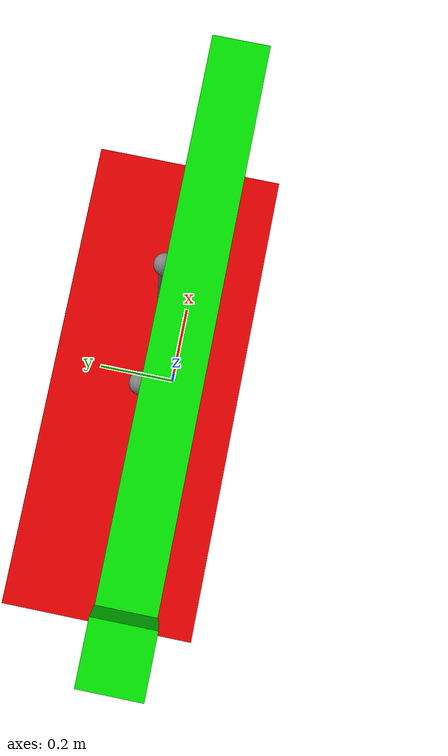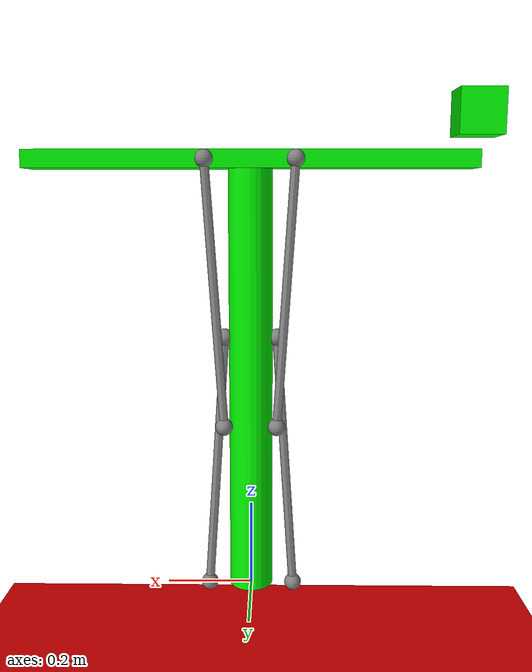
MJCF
<mujoco>
    <option timestep="0.001">
        <flag gravity="enable"/>
	</option>
    <worldbody>
        <light diffuse=".5 .5 .5" pos="0 0 3" dir="0 0 -1"/>
        <geom type="plane" pos="0 0 -0.1" size="1 1 0.1" rgba=".9 0 0 1"/>

        <site name="s1" pos="0.1 0 0" size="0.02"/>
        <site name="s2" pos="-0.1 0 0" size="0.02"/>

        <body pos="0 0 0.5" euler="0 0 0">
            <joint name="joint0" type="hinge" axis="0 -1 0" pos="0 0 -0.5" damping="0.001" limited="true" range="-90 90"/>
            <geom name="link0" type="cylinder" pos="0 0 0" size="0.05 .5" rgba="0 .9 0 1" mass="1"/>

            <site name="s3" pos="0.06 0 0.1" size="0.02"/>
            <site name="s4" pos="-0.06 0 0.1" size="0.02"/>

            <site name="s5" pos="0.06 0.05 -0.1" size="0.02"/>
            <site name="s6" pos="-0.06 0.05 -0.1" size="0.02"/>

            <body pos="0 0 0.5" euler="0 0 0">
                <joint name="joint1" type="hinge" axis="0 -1 0" pos="0 0 0" damping="0.001" limited="true" range="-90 90"/>
                <geom name="link1" type="box" pos="0 0 0" size="0.5 0.05 0.02" rgba="0 .9 0 1" mass="1"/>

                <site name="s7" pos="0.1 0.05 0" size="0.02"/>
                <site name="s8" pos="-0.1 0.05 0" size="0.02"/>

                <body pos="-0.5 0 0.1" euler="0 0 0">
                    <joint name="joint2" type="slide" axis="1 0 0" pos="0 0 0" damping="0" limited="true" range="0 1"/>
                    <geom name="link3" type="box" pos="0 0 0" size="0.05 0.05 0.05" rgba="0 .9 0 1" mass="1"/>
                </body>
            </body>
        </body>
    </worldbody>
    <tendon>
        <spatial name="joint0_r" width="0.01">
            <site site="s1"/>
            <site site="s3"/>
        </spatial>
        <spatial name="joint0_l" width="0.01">
            <site site="s2"/>
            <site site="s4"/>
        </spatial>
        <spatial name="joint1_r" width="0.01">
            <site site="s5"/>
            <site site="s7"/>
        </spatial>
        <spatial name="joint1_l" width="0.01">
            <site site="s6"/>
            <site site="s8"/>
        </spatial>
    </tendon>
    <actuator>
        <muscle  name="muscle0_r" tendon="joint0_r" range="0.75 1.15" scale="400"/>
        <muscle  name="muscle0_l" tendon="joint0_l" range="0.75 1.15" scale="400"/>
        <muscle  name="muscle1_r" tendon="joint1_r" range="0.75 1.15" scale="400"/>
        <muscle  name="muscle1_l" tendon="joint1_l" range="0.75 1.15" scale="400"/>
    </actuator>
</mujoco>
